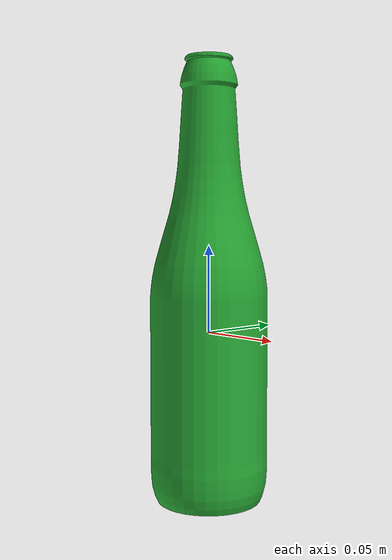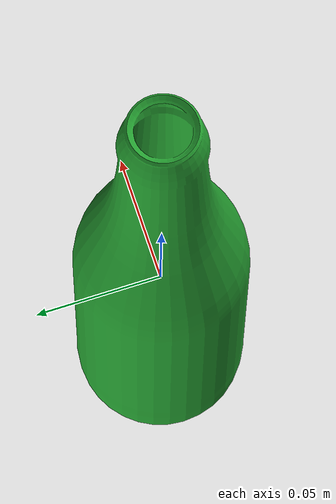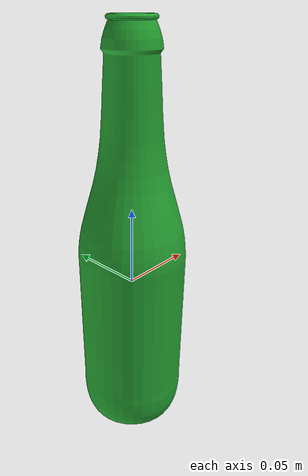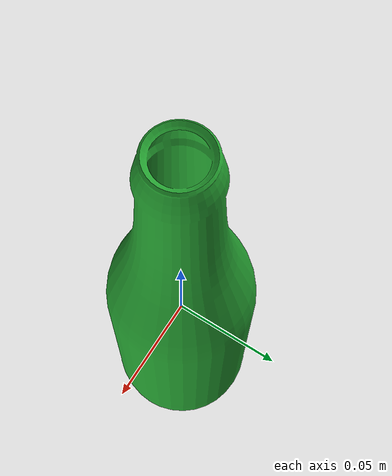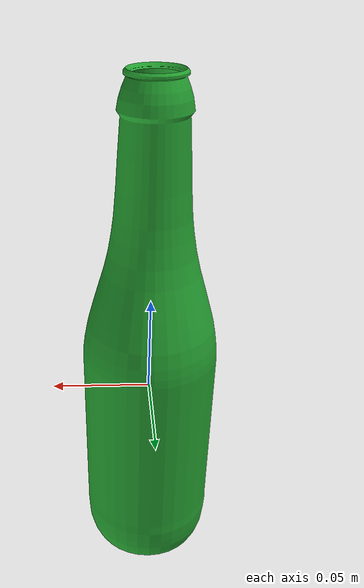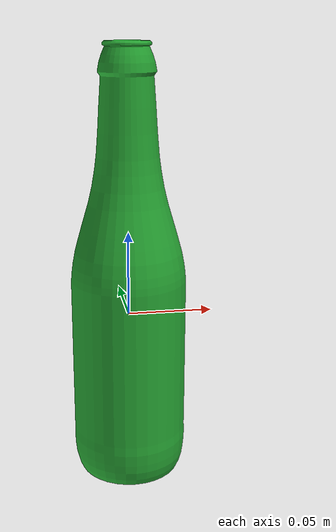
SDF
<?xml version='1.0'?>
<sdf version='1.7'>
  <model name='beer_bottle'>

    <link name='link'>
      <inertial>
        <mass>0.005</mass>
        <inertia>
          <ixx>0.1636</ixx>
          <ixy>0.0</ixy>
          <ixz>0.0</ixz>
          <iyy>0.1636</iyy>
          <iyz>0.0</iyz>
          <izz>0.1636</izz>
        </inertia>
      </inertial>
      <pose>0 0 0 0 -0 0</pose>
      <visual name='visual'>
        <pose>0 0 0 0 -0 0</pose>
        <geometry>
          <mesh>
            <uri>model://beer_bottle/meshes/beer_bottle.obj</uri>
            <scale>1 1 1</scale>
          </mesh>
        </geometry>
        <material>
          <lighting>1</lighting>
          <script>
            <uri>file://media/materials/scripts/gazebo.material</uri>
            <name>Gazebo/Green</name>
          </script>
        </material>
        <transparency>0.1</transparency>
        <cast_shadows>1</cast_shadows>
      </visual>
      <collision name="base_collision">
        <pose>0 0 0 0 0 0</pose>
        <geometry>
          <mesh>
            <uri>model://beer_bottle/meshes/beer_bottle.obj</uri>
            <scale>1 1 1</scale>
          </mesh>
        </geometry>
      </collision>
    </link>
    <static>0</static>
    <allow_auto_disable>1</allow_auto_disable>
    <plugin name="BuoyancyPlugin" filename="libbuoyancy_gazebo_plugin.so">
      <wave_model>ocean_waves</wave_model>
      <fluid_density>5</fluid_density>
      <fluid_level>0</fluid_level>
      <linear_drag>10</linear_drag>
      <angular_drag>10</angular_drag>
      <buoyancy name="buoyancy_base">
        <link_name>link</link_name>
        <pose>0 0 0 0 0 0</pose>
        <geometry>
          <box>
            <size>0.06773 0.06773 0.254998</size>
          </box>
        </geometry>
      </buoyancy>
    </plugin>
  </model>
</sdf>
